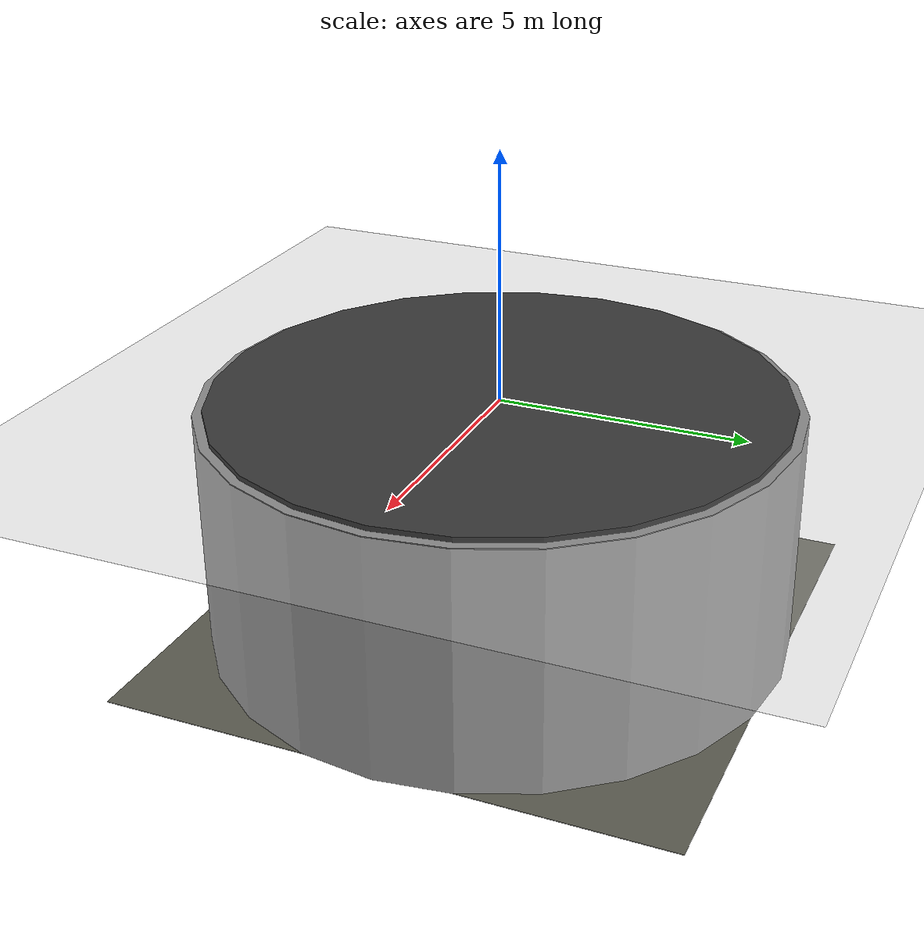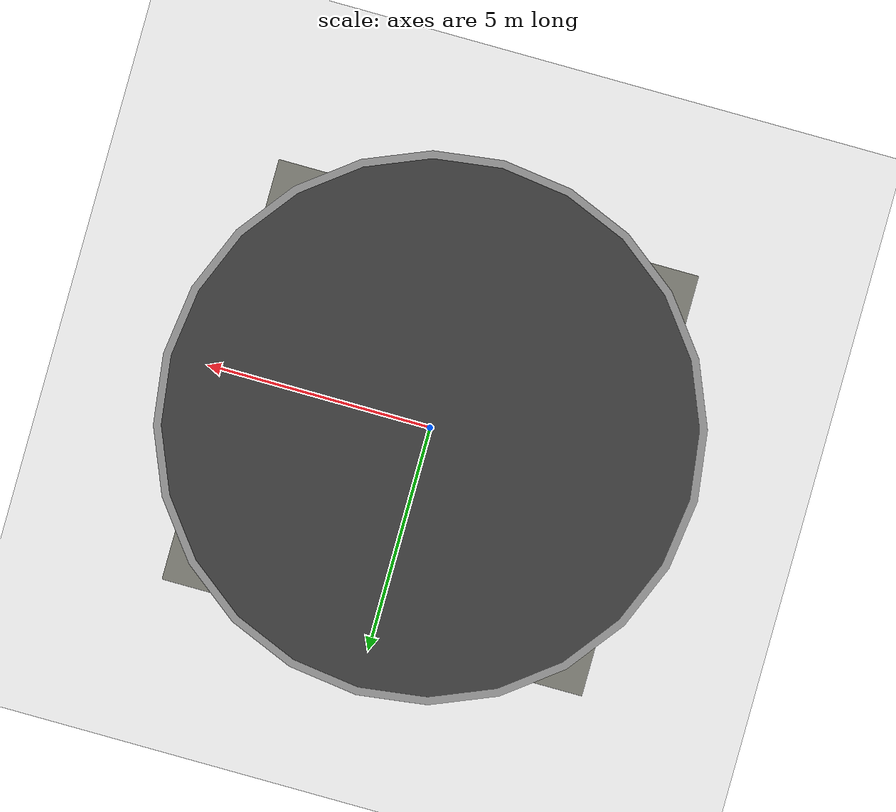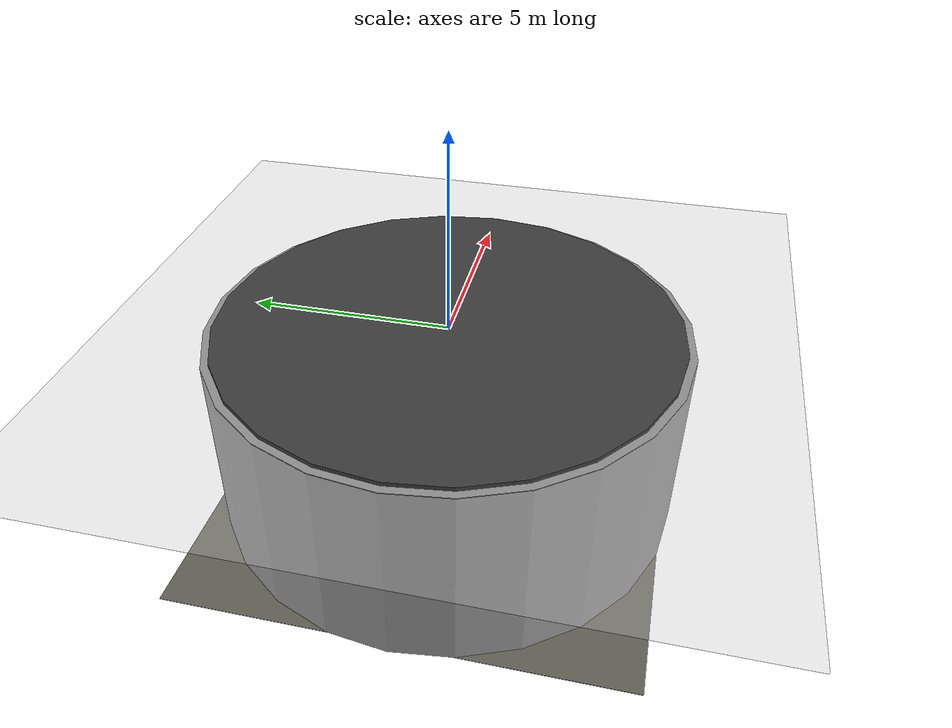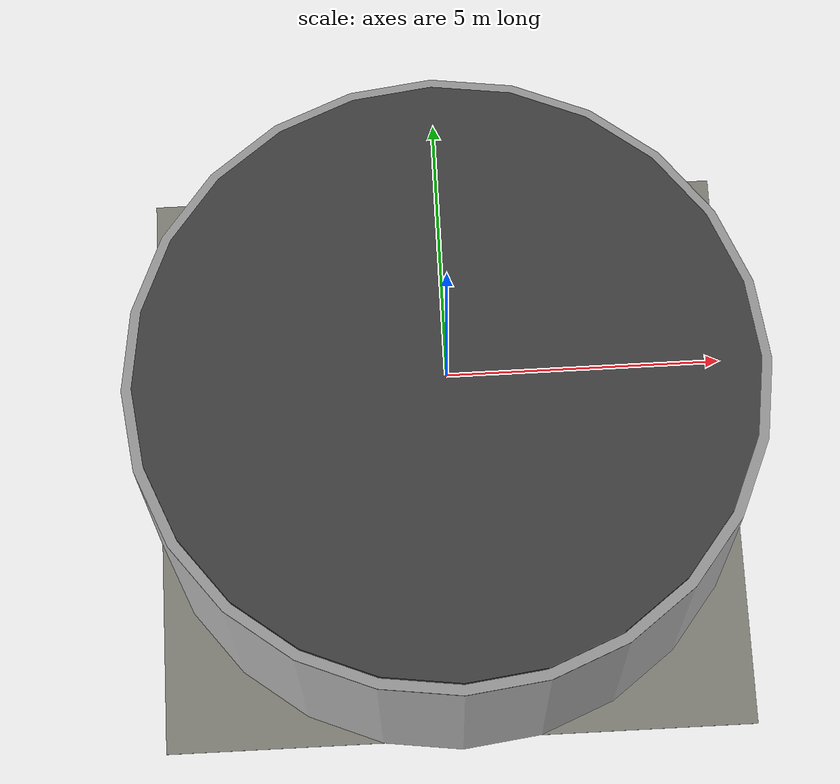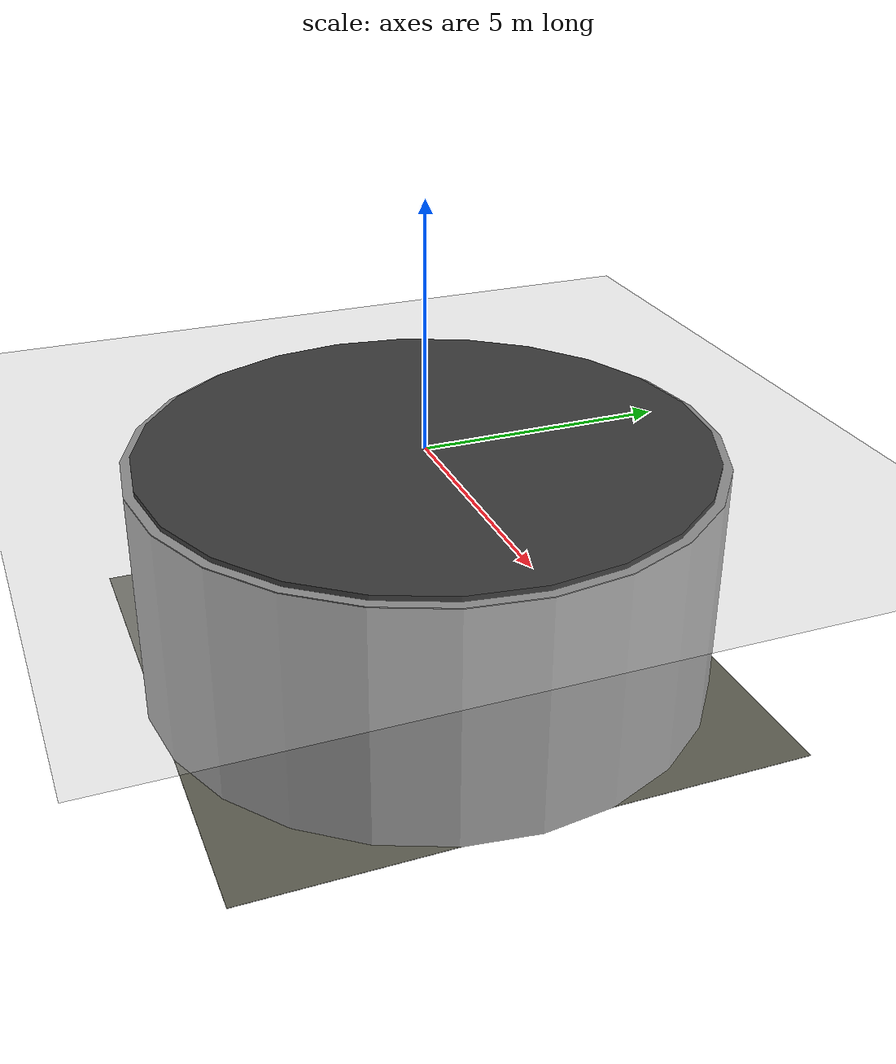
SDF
<?xml version="1.0" ?>
<sdf version="1.6">
  <world name="deep_pit_with_spiral_ramp">

    <!-- 物理引擎配置 -->
    <physics type="ode">
      <real_time_update_rate>1000</real_time_update_rate>
      <max_step_size>0.001</max_step_size>
    </physics>

    <!-- 场景光照 -->
    <scene>
      <ambient>0.4 0.4 0.4 1</ambient>
      <background>0.7 0.7 0.7 1</background>
      <shadows>true</shadows>
    </scene>

    <!-- 地面 -->
    <model name="ground_plane">
      <static>true</static>
      <link name="link">
        <collision name="collision">
          <geometry>
            <plane>
              <normal>0 0 1</normal>
              <size>100 100</size>
            </plane>
          </geometry>
        </collision>
        <visual name="visual">
          <geometry>
            <plane>
              <normal>0 0 1</normal>
              <size>100 100</size>
            </plane>
          </geometry>
          <material>
            <script>
              <uri>file://media/materials/scripts/gazebo.material</uri>
              <name>Gazebo/Grey</name>
            </script>
          </material>
        </visual>
      </link>
    </model>

    <!-- 太阳 -->
    <light name="sun" type="directional">
      <cast_shadows>true</cast_shadows>
      <pose>0 0 10 0 0 0</pose>
      <diffuse>0.8 0.8 0.8 1</diffuse>
      <specular>0.2 0.2 0.2 1</specular>
      <direction>-0.5 0.5 -1</direction>
    </light>

    <!-- 基坑墙壁 -->
    <model name="pit_wall">
      <static>true</static>
      <link name="wall_link">
        <collision name="outer_collision">
          <pose>0 0 -2.5 0 0 0</pose>
          <geometry>
            <cylinder>
              <radius>6</radius>
              <length>5</length>
            </cylinder>
          </geometry>
        </collision>
        <visual name="outer_visual">
          <pose>0 0 -2.5 0 0 0</pose>
          <geometry>
            <cylinder>
              <radius>6</radius>
              <length>5</length>
            </cylinder>
          </geometry>
          <material>
            <ambient>0.5 0.5 0.5 1</ambient>
            <diffuse>0.6 0.6 0.6 1</diffuse>
          </material>
        </visual>
        <visual name="inner_visual">
          <pose>0 0 -2.5 0 0 0</pose>
          <geometry>
            <cylinder>
              <radius>5.8</radius>
              <length>5.2</length>
            </cylinder>
          </geometry>
          <material>
            <ambient>0.2 0.2 0.2 1</ambient>
            <diffuse>0.25 0.25 0.25 1</diffuse>
          </material>
        </visual>
      </link>
    </model>

    <!-- 基坑底部 -->
    <model name="pit_bottom">
      <static>true</static>
      <pose>0 0 -5 0 0 0</pose>
      <link name="bottom_link">
        <collision name="collision">
          <geometry>
            <plane>
              <normal>0 0 1</normal>
              <size>11.6 11.6</size>
            </plane>
          </geometry>
        </collision>
        <visual name="visual">
          <geometry>
            <plane>
              <normal>0 0 1</normal>
              <size>11.6 11.6</size>
            </plane>
          </geometry>
          <material>
            <ambient>0.3 0.3 0.25 1</ambient>
            <diffuse>0.4 0.4 0.35 1</diffuse>
          </material>
        </visual>
      </link>
    </model>

    <!-- 6根支护桩 -->
    <model name="pile_1">
      <static>true</static>
      <pose>5 0 -2.5 0 0 0</pose>
      <link name="link">
        <collision><geometry><cylinder><radius>0.4</radius><length>5</length></cylinder></geometry></collision>
        <visual><geometry><cylinder><radius>0.4</radius><length>5</length></cylinder></geometry><material><ambient>0.6 0.6 0.6 1</ambient><diffuse>0.7 0.7 0.7 1</diffuse></material></visual>
      </link>
    </model>

    <model name="pile_2">
      <static>true</static>
      <pose>2.5 4.33 -2.5 0 0 0</pose>
      <link name="link">
        <collision><geometry><cylinder><radius>0.4</radius><length>5</length></cylinder></geometry></collision>
        <visual><geometry><cylinder><radius>0.4</radius><length>5</length></cylinder></geometry><material><ambient>0.6 0.6 0.6 1</ambient><diffuse>0.7 0.7 0.7 1</diffuse></material></visual>
      </link>
    </model>

    <model name="pile_3">
      <static>true</static>
      <pose>-2.5 4.33 -2.5 0 0 0</pose>
      <link name="link">
        <collision><geometry><cylinder><radius>0.4</radius><length>5</length></cylinder></geometry></collision>
        <visual><geometry><cylinder><radius>0.4</radius><length>5</length></cylinder></geometry><material><ambient>0.6 0.6 0.6 1</ambient><diffuse>0.7 0.7 0.7 1</diffuse></material></visual>
      </link>
    </model>

    <model name="pile_4">
      <static>true</static>
      <pose>-5 0 -2.5 0 0 0</pose>
      <link name="link">
        <collision><geometry><cylinder><radius>0.4</radius><length>5</length></cylinder></geometry></collision>
        <visual><geometry><cylinder><radius>0.4</radius><length>5</length></cylinder></geometry><material><ambient>0.6 0.6 0.6 1</ambient><diffuse>0.7 0.7 0.7 1</diffuse></material></visual>
      </link>
    </model>

    <model name="pile_5">
      <static>true</static>
      <pose>-2.5 -4.33 -2.5 0 0 0</pose>
      <link name="link">
        <collision><geometry><cylinder><radius>0.4</radius><length>5</length></cylinder></geometry></collision>
        <visual><geometry><cylinder><radius>0.4</radius><length>5</length></cylinder></geometry><material><ambient>0.6 0.6 0.6 1</ambient><diffuse>0.7 0.7 0.7 1</diffuse></material></visual>
      </link>
    </model>

    <model name="pile_6">
      <static>true</static>
      <pose>2.5 -4.33 -2.5 0 0 0</pose>
      <link name="link">
        <collision><geometry><cylinder><radius>0.4</radius><length>5</length></cylinder></geometry></collision>
        <visual><geometry><cylinder><radius>0.4</radius><length>5</length></cylinder></geometry><material><ambient>0.6 0.6 0.6 1</ambient><diffuse>0.7 0.7 0.7 1</diffuse></material></visual>
      </link>
    </model>

    <!-- 螺旋坡道 (多段斜坡组成) -->
    <!-- 螺旋半径2.5m，每段下降0.6m，共8段到达坑底 -->

    <model name="spiral_ramp_1">
      <static>true</static>
      <pose>2.5 0 -0.3 0 0.25 0</pose>
      <link name="link">
        <collision><geometry><box><size>1.8 0.6 0.1</size></box></geometry></collision>
        <visual><geometry><box><size>1.8 0.6 0.1</size></box></geometry><material><ambient>0.5 0.35 0.2 1</ambient><diffuse>0.6 0.45 0.3 1</diffuse></material></visual>
      </link>
    </model>

    <model name="spiral_ramp_2">
      <static>true</static>
      <pose>1.25 2.17 -0.9 0 0.25 1.05</pose>
      <link name="link">
        <collision><geometry><box><size>2.2 0.6 0.1</size></box></geometry></collision>
        <visual><geometry><box><size>2.2 0.6 0.1</size></box></geometry><material><ambient>0.5 0.35 0.2 1</ambient><diffuse>0.6 0.45 0.3 1</diffuse></material></visual>
      </link>
    </model>

    <model name="spiral_ramp_3">
      <static>true</static>
      <pose>-1.25 2.17 -1.5 0 0.25 2.1</pose>
      <link name="link">
        <collision><geometry><box><size>2.2 0.6 0.1</size></box></geometry></collision>
        <visual><geometry><box><size>2.2 0.6 0.1</size></box></geometry><material><ambient>0.5 0.35 0.2 1</ambient><diffuse>0.6 0.45 0.3 1</diffuse></material></visual>
      </link>
    </model>

    <model name="spiral_ramp_4">
      <static>true</static>
      <pose>-2.5 0 -2.1 0 0.25 3.14</pose>
      <link name="link">
        <collision><geometry><box><size>1.8 0.6 0.1</size></box></geometry></collision>
        <visual><geometry><box><size>1.8 0.6 0.1</size></box></geometry><material><ambient>0.5 0.35 0.2 1</ambient><diffuse>0.6 0.45 0.3 1</diffuse></material></visual>
      </link>
    </model>

    <model name="spiral_ramp_5">
      <static>true</static>
      <pose>-1.25 -2.17 -2.7 0 0.25 4.19</pose>
      <link name="link">
        <collision><geometry><box><size>2.2 0.6 0.1</size></box></geometry></collision>
        <visual><geometry><box><size>2.2 0.6 0.1</size></box></geometry><material><ambient>0.5 0.35 0.2 1</ambient><diffuse>0.6 0.45 0.3 1</diffuse></material></visual>
      </link>
    </model>

    <model name="spiral_ramp_6">
      <static>true</static>
      <pose>1.25 -2.17 -3.3 0 0.25 5.24</pose>
      <link name="link">
        <collision><geometry><box><size>2.2 0.6 0.1</size></box></geometry></collision>
        <visual><geometry><box><size>2.2 0.6 0.1</size></box></geometry><material><ambient>0.5 0.35 0.2 1</ambient><diffuse>0.6 0.45 0.3 1</diffuse></material></visual>
      </link>
    </model>

    <model name="spiral_ramp_7">
      <static>true</static>
      <pose>2.5 0 -3.9 0 0.25 6.28</pose>
      <link name="link">
        <collision><geometry><box><size>1.8 0.6 0.1</size></box></geometry></collision>
        <visual><geometry><box><size>1.8 0.6 0.1</size></box></geometry><material><ambient>0.5 0.35 0.2 1</ambient><diffuse>0.6 0.45 0.3 1</diffuse></material></visual>
      </link>
    </model>

    <!-- 坑底点光源 -->
    <light name="pit_bottom_light" type="point">
      <pose>0 0 -4.5 0 0 0</pose>
      <diffuse>0.5 0.5 0.4 1</diffuse>
      <specular>0.1 0.1 0.1 1</specular>
      <attenuation>
        <range>8</range>
        <constant>0.5</constant>
        <linear>0.05</linear>
        <quadratic>0.01</quadratic>
      </attenuation>
    </light>

  </world>
</sdf>
